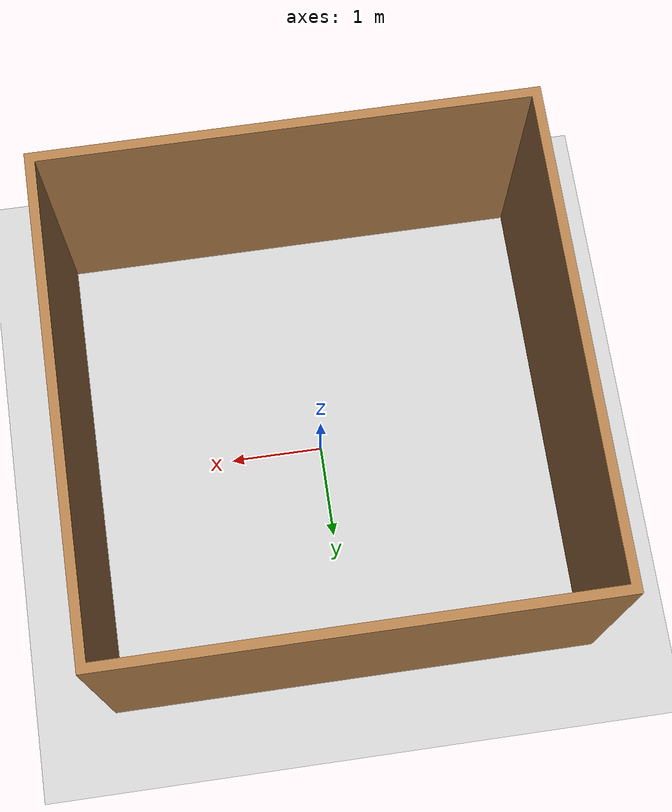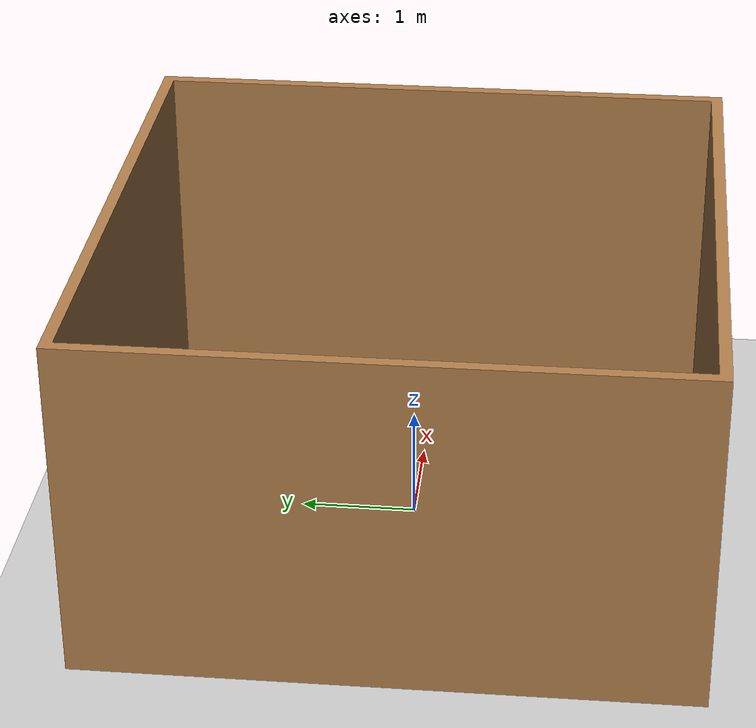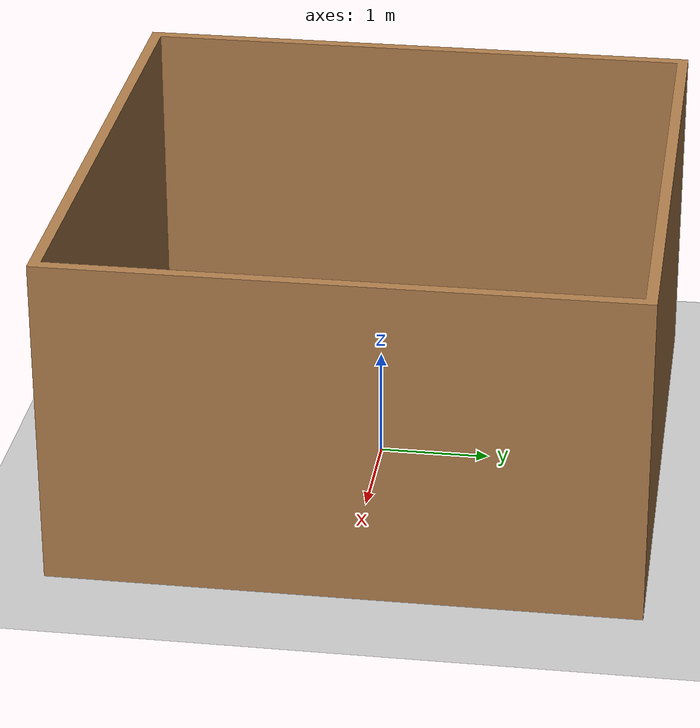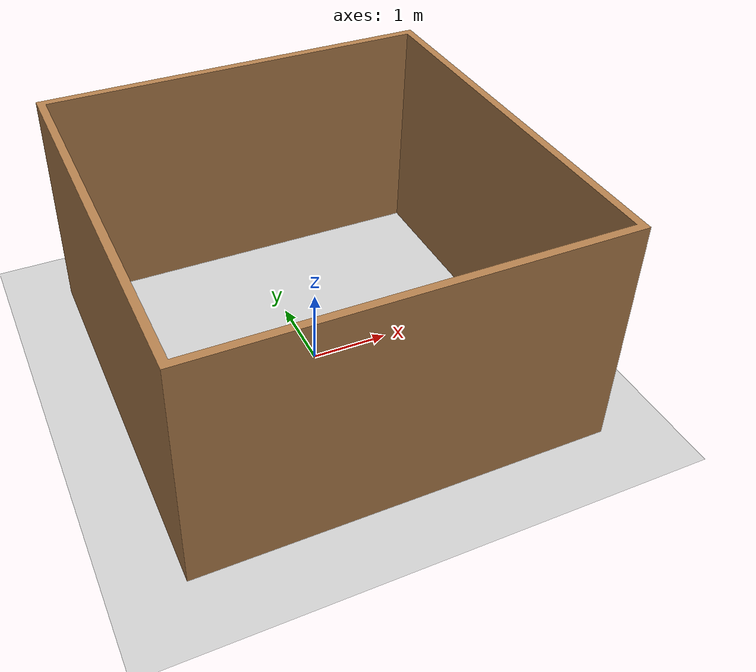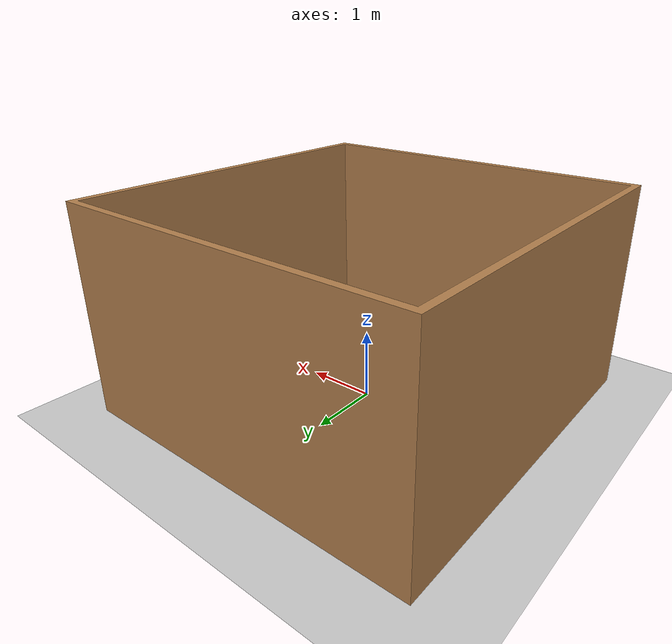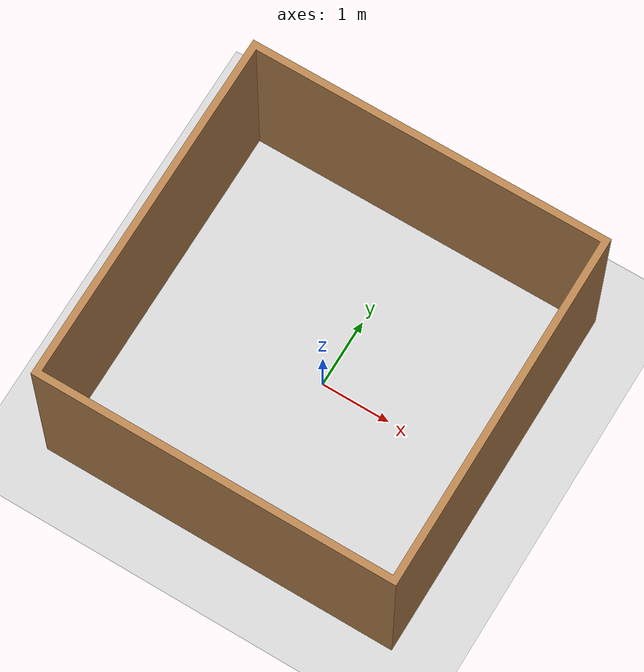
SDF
<?xml version="1.0"?>
<sdf version="1.7">
  <world name="stage1">

    <include>
      <uri>model://ground_plane</uri>
    </include>

    <include>
      <uri>model://sun</uri>
    </include>

    <scene>
      <shadows>false</shadows>
    </scene>

    <gui fullscreen='0'>
      <camera name='user_camera'>
        <pose>0.319654 -0.235002 9.29441 0 1.5138 0.009599</pose>
        <view_controller>orbit</view_controller>
        <projection_type>perspective</projection_type>
      </camera>
    </gui>

    <physics type="ode">
      <real_time_update_rate>1000.0</real_time_update_rate>
      <max_step_size>0.001</max_step_size>
      <real_time_factor>1</real_time_factor>
      <ode>
        <solver>
          <type>quick</type>
          <iters>150</iters>
          <precon_iters>0</precon_iters>
          <sor>1.400000</sor>
          <use_dynamic_moi_rescaling>1</use_dynamic_moi_rescaling>
        </solver>
        <constraints>
          <cfm>0.00001</cfm>
          <erp>0.2</erp>
          <contact_max_correcting_vel>2000.000000</contact_max_correcting_vel>
          <contact_surface_layer>0.01000</contact_surface_layer>
        </constraints>
      </ode>
    </physics>

    <model name="stage1">
      <static>1</static>
      <include>
        <uri>model://stage1</uri>
      </include>
    </model>

  </world>
</sdf>

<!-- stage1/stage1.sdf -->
<sdf version='1.7'>
  <model name='stage1d'>
    <pose>0 0 0 0 0 0</pose>
    <link name='field'>
      <collision name='field_collision'>
        <geometry>
          <mesh>
            <scale>0.001 0.001 0.001</scale>
            <uri>model://meshes/field.stl</uri>
          </mesh>
        </geometry>
        <pose>0 0 0.0 0 -0 0</pose>
      </collision>
      <visual name='Wall_1_Visual'>
        <pose>0 0 0.0 0 -0 0</pose>
        <geometry>
          <mesh>
            <scale>0.001 0.001 0.001</scale>
            <uri>model://meshes/stage1.stl</uri>
          </mesh>
        </geometry>
        <material>
          <script>
            <uri>file://media/materials/scripts/gazebo.material</uri>
            <name>Gazebo/Wood</name>
          </script>
          <ambient>1 1 1 1</ambient>
        </material>
      </visual>
      <pose>0 0 0 0 0 0</pose>
    </link>

    <static>1</static>
  </model>
</sdf>
